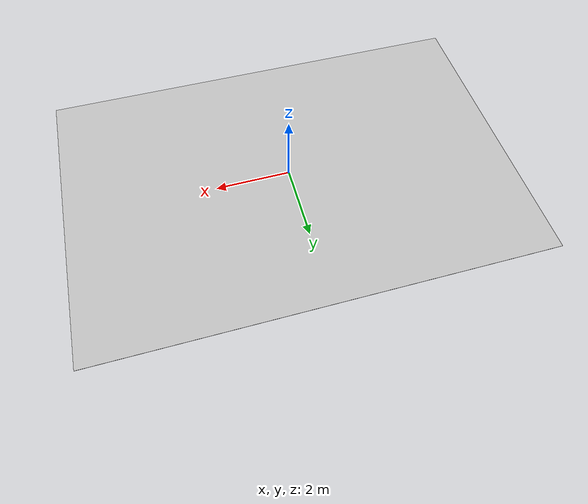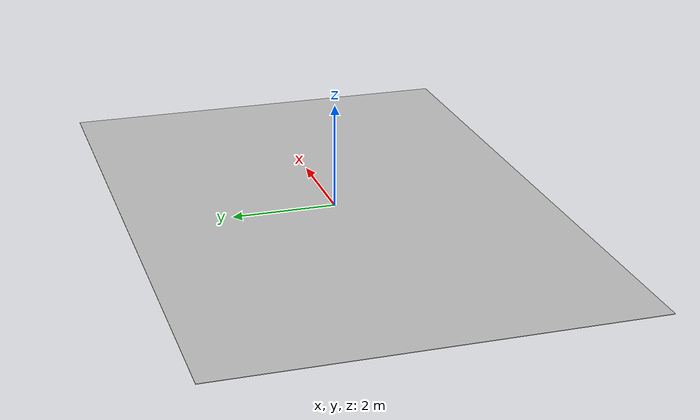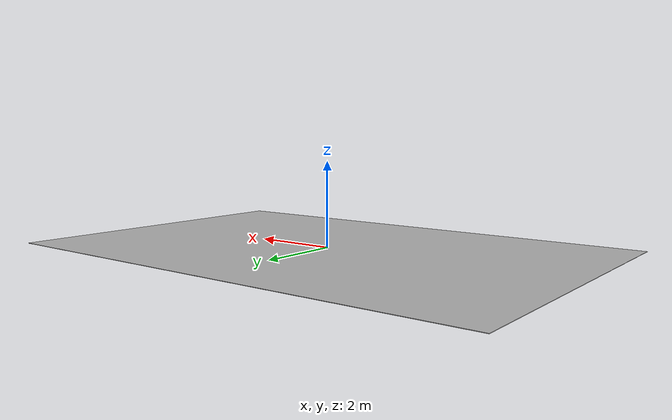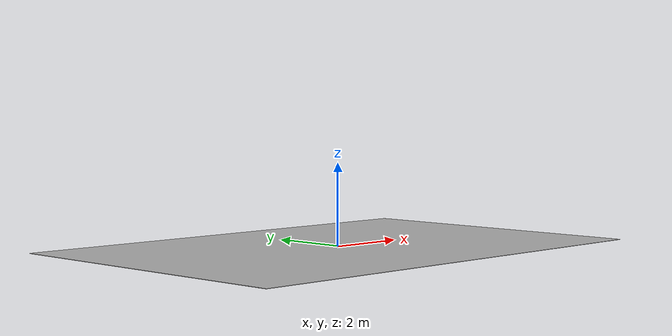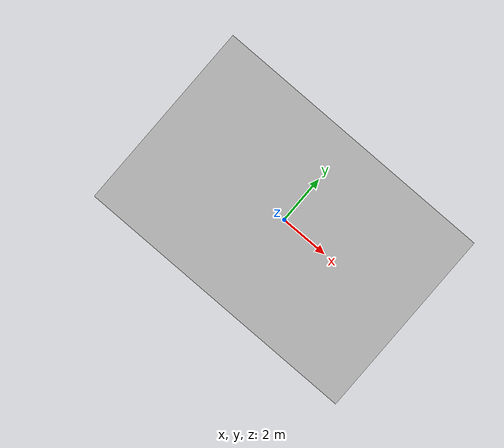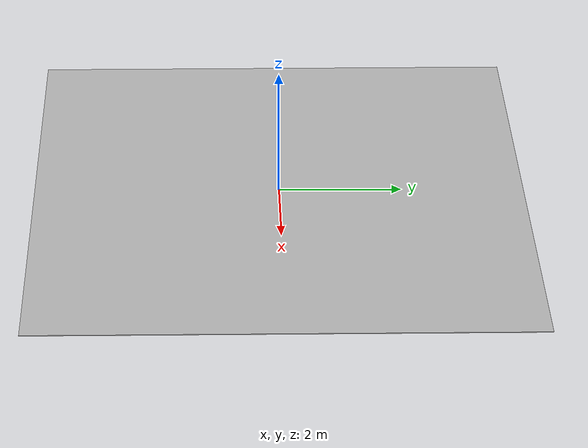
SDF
<?xml version="1.0" ?>
<sdf version="1.6">
  <model name="warehouse">
    <static>true</static>
    <link name="warehouse_link">
      <visual name="warehouse_link">
        <pose>0 0 0.01 0 0 0</pose>
        <cast_shadows>false</cast_shadows>
        <geometry>
          <mesh>
             <uri>model://warehouse/meshes/warehouse.dae</uri>
          </mesh>
        </geometry>
      </visual>
    </link>
  </model>
</sdf>
